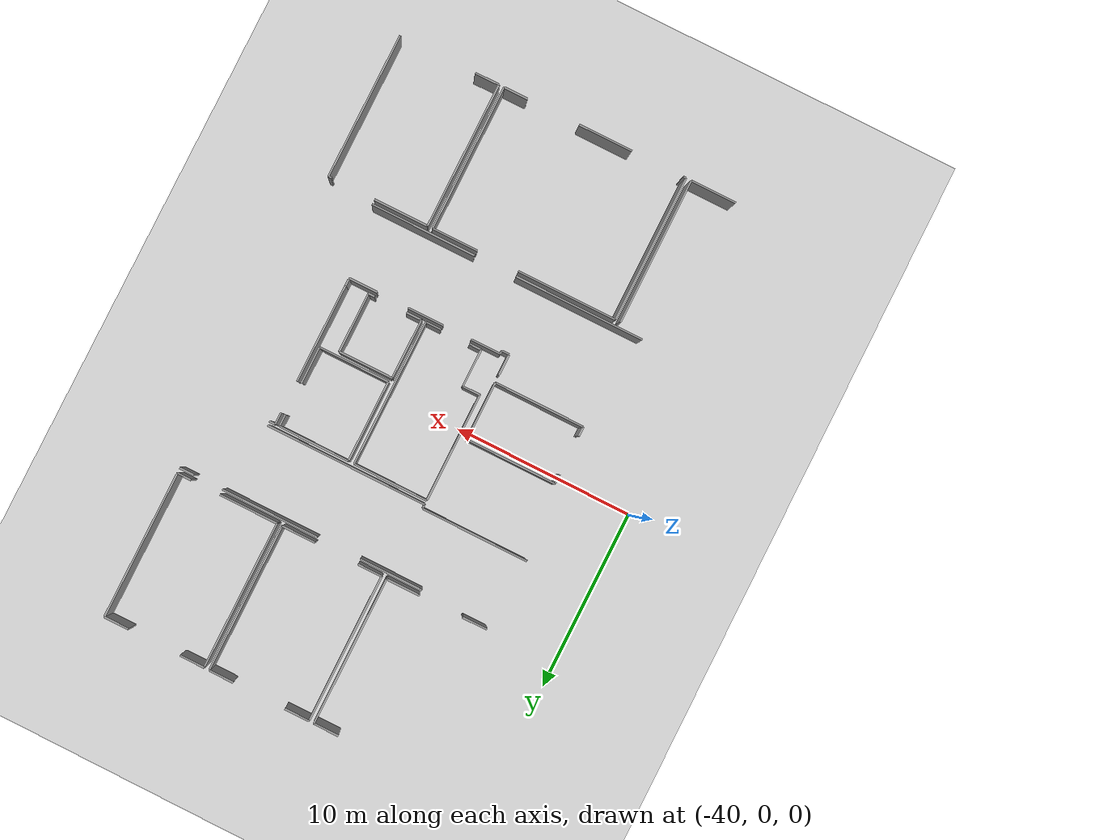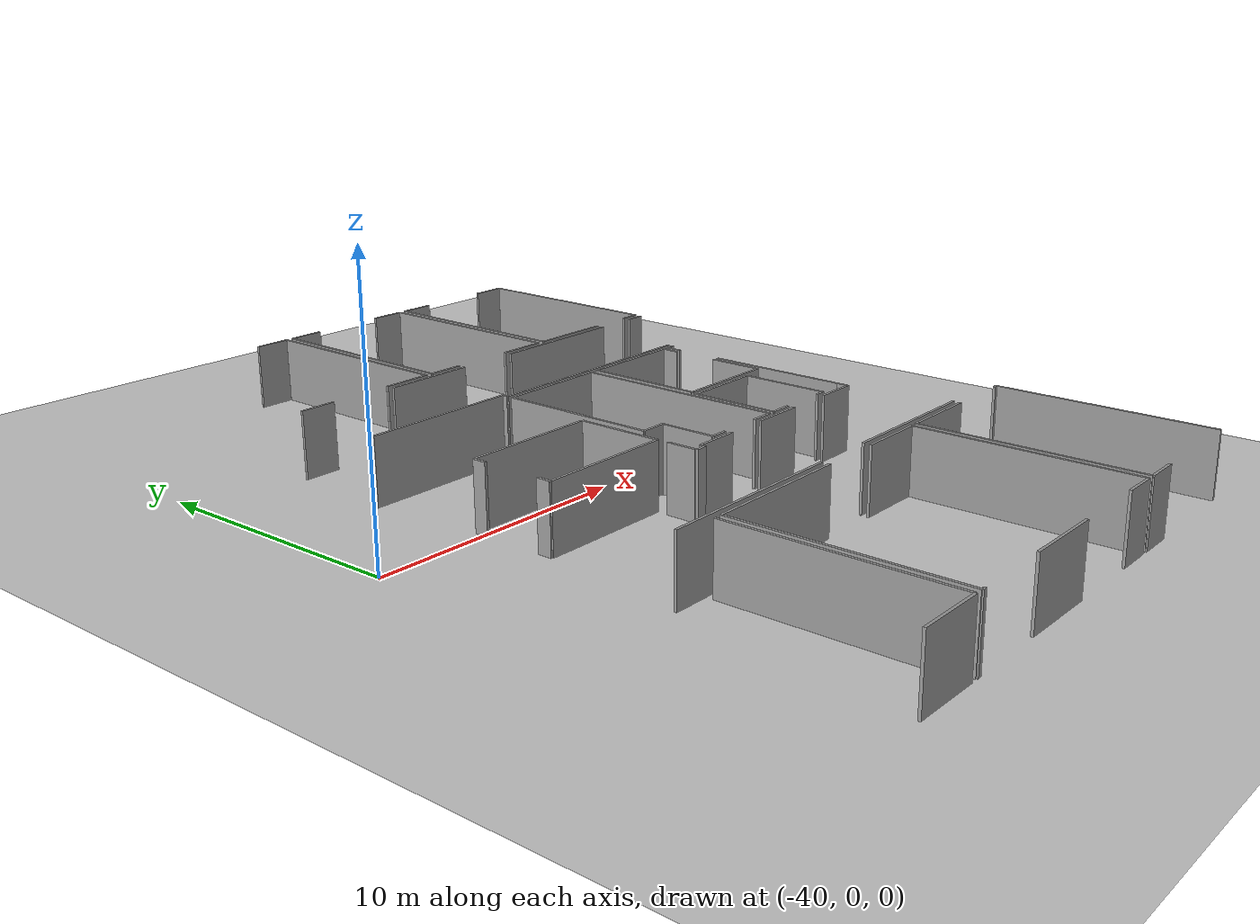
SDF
<sdf version="1.6">
 <world name="default">
  <model name="ground_plane">
   <static>1</static>
   <link name="link">
    <collision name="collision">
     <geometry><plane><normal>0 0 1</normal><size>100 100</size></plane></geometry>
     <surface><friction><ode><mu>100</mu><mu2>50</mu2></ode></friction></surface>
    </collision>
    <visual name="visual">
     <cast_shadows>0</cast_shadows>
     <geometry><plane><normal>0 0 1</normal><size>100 100</size></plane></geometry>
     <material>
      <script><uri>file://media/materials/scripts/gazebo.material</uri><name>Gazebo/Grey</name></script>
     </material>
    </visual>
   </link>
  </model>
  <model name="50041172">
   <static>1</static>
   <link name="Wall_23">
    <collision name="Wall_23_Collision">
     <geometry><box><size>8.19815185291 0.1 2.5</size></box></geometry>
     <pose>4.09907592646 0 1.25 0 0 0</pose>
    </collision>
    <visual name="Wall_23_Visual">
     <pose>4.09907592646 0 1.25 0 0 0</pose>
     <geometry><box><size>8.19815185291 0.1 2.5</size></box></geometry>
     <material>
      <script><uri>file://media/materials/scripts/gazebo.material</uri><name>Gazebo/Grey</name></script>
      <ambient>1 1 1 1</ambient>
     </material>
    </visual>
    <pose>30.7186180178 -25.3395573338 0 0 0 -1.57079632679</pose>
   </link>
   <link name="Wall_24">
    <collision name="Wall_24_Collision">
     <geometry><box><size>2.54942682036 0.1 2.5</size></box></geometry>
     <pose>1.27471341018 0 1.25 0 0 0</pose>
    </collision>
    <visual name="Wall_24_Visual">
     <pose>1.27471341018 0 1.25 0 0 0</pose>
     <geometry><box><size>2.54942682036 0.1 2.5</size></box></geometry>
     <material>
      <script><uri>file://media/materials/scripts/gazebo.material</uri><name>Gazebo/Grey</name></script>
      <ambient>1 1 1 1</ambient>
     </material>
    </visual>
    <pose>30.7186180178 -33.5377091868 0 0 0 3.14159265359</pose>
   </link>
   <link name="Wall_26">
    <collision name="Wall_26_Collision">
     <geometry><box><size>8.20704328221 0.1 2.5</size></box></geometry>
     <pose>4.1035216411 0 1.25 0 0 0</pose>
    </collision>
    <visual name="Wall_26_Visual">
     <pose>4.1035216411 0 1.25 0 0 0</pose>
     <geometry><box><size>8.20704328221 0.1 2.5</size></box></geometry>
     <material>
      <script><uri>file://media/materials/scripts/gazebo.material</uri><name>Gazebo/Grey</name></script>
      <ambient>1 1 1 1</ambient>
     </material>
    </visual>
    <pose>31.0204185323 -33.5486329427 0 0 0 1.57079632679</pose>
   </link>
   <link name="Wall_27">
    <collision name="Wall_27_Collision">
     <geometry><box><size>5.56692388301 0.1 2.5</size></box></geometry>
     <pose>2.78346194151 0 1.25 0 0 0</pose>
    </collision>
    <visual name="Wall_27_Visual">
     <pose>2.78346194151 0 1.25 0 0 0</pose>
     <geometry><box><size>5.56692388301 0.1 2.5</size></box></geometry>
     <material>
      <script><uri>file://media/materials/scripts/gazebo.material</uri><name>Gazebo/Grey</name></script>
      <ambient>1 1 1 1</ambient>
     </material>
    </visual>
    <pose>31.0204185323 -25.3415896605 0 0 0 0.0</pose>
   </link>
   <link name="Wall_28">
    <collision name="Wall_28_Collision">
     <geometry><box><size>2.57114731193 0.1 2.5</size></box></geometry>
     <pose>1.28557365597 0 1.25 0 0 0</pose>
    </collision>
    <visual name="Wall_28_Visual">
     <pose>1.28557365597 0 1.25 0 0 0</pose>
     <geometry><box><size>2.57114731193 0.1 2.5</size></box></geometry>
     <material>
      <script><uri>file://media/materials/scripts/gazebo.material</uri><name>Gazebo/Grey</name></script>
      <ambient>1 1 1 1</ambient>
     </material>
    </visual>
    <pose>38.9472547712 -25.3415896605 0 0 0 0.0</pose>
   </link>
   <link name="Wall_29">
    <collision name="Wall_29_Collision">
     <geometry><box><size>8.20132736337 0.1 2.5</size></box></geometry>
     <pose>4.10066368169 0 1.25 0 0 0</pose>
    </collision>
    <visual name="Wall_29_Visual">
     <pose>4.10066368169 0 1.25 0 0 0</pose>
     <geometry><box><size>8.20132736337 0.1 2.5</size></box></geometry>
     <material>
      <script><uri>file://media/materials/scripts/gazebo.material</uri><name>Gazebo/Grey</name></script>
      <ambient>1 1 1 1</ambient>
     </material>
    </visual>
    <pose>41.5184020831 -25.3415896605 0 0 0 -1.57079632679</pose>
   </link>
   <link name="Wall_30">
    <collision name="Wall_30_Collision">
     <geometry><box><size>1.35797529453 0.1 2.5</size></box></geometry>
     <pose>0.678987647264 0 1.25 0 0 0</pose>
    </collision>
    <visual name="Wall_30_Visual">
     <pose>0.678987647264 0 1.25 0 0 0</pose>
     <geometry><box><size>1.35797529453 0.1 2.5</size></box></geometry>
     <material>
      <script><uri>file://media/materials/scripts/gazebo.material</uri><name>Gazebo/Grey</name></script>
      <ambient>1 1 1 1</ambient>
     </material>
    </visual>
    <pose>41.5184020831 -33.5429170239 0 0 0 3.14159265359</pose>
   </link>
   <link name="Wall_31">
    <collision name="Wall_31_Collision">
     <geometry><box><size>3.03947159506 0.1 2.5</size></box></geometry>
     <pose>1.51973579753 0 1.25 0 0 0</pose>
    </collision>
    <visual name="Wall_31_Visual">
     <pose>1.51973579753 0 1.25 0 0 0</pose>
     <geometry><box><size>3.03947159506 0.1 2.5</size></box></geometry>
     <material>
      <script><uri>file://media/materials/scripts/gazebo.material</uri><name>Gazebo/Grey</name></script>
      <ambient>1 1 1 1</ambient>
     </material>
    </visual>
    <pose>37.1824330761 -33.5429170239 0 0 0 3.14159265359</pose>
   </link>
   <link name="Wall_32">
    <collision name="Wall_32_Collision">
     <geometry><box><size>0.160147764803 0.1 2.5</size></box></geometry>
     <pose>0.0800738824014 0 1.25 0 0 0</pose>
    </collision>
    <visual name="Wall_32_Visual">
     <pose>0.0800738824014 0 1.25 0 0 0</pose>
     <geometry><box><size>0.160147764803 0.1 2.5</size></box></geometry>
     <material>
      <script><uri>file://media/materials/scripts/gazebo.material</uri><name>Gazebo/Grey</name></script>
      <ambient>1 1 1 1</ambient>
     </material>
    </visual>
    <pose>31.1804642596 -33.5429170239 0 0 0 -3.10589354091</pose>
   </link>
   <link name="Wall_33">
    <collision name="Wall_33_Collision">
     <geometry><box><size>8.22292083452 0.1 2.5</size></box></geometry>
     <pose>4.11146041726 0 1.25 0 0 0</pose>
    </collision>
    <visual name="Wall_33_Visual">
     <pose>4.11146041726 0 1.25 0 0 0</pose>
     <geometry><box><size>8.22292083452 0.1 2.5</size></box></geometry>
     <material>
      <script><uri>file://media/materials/scripts/gazebo.material</uri><name>Gazebo/Grey</name></script>
      <ambient>1 1 1 1</ambient>
     </material>
    </visual>
    <pose>41.8068654536 -33.5500301673 0 0 0 1.57079632679</pose>
   </link>
   <link name="Wall_34">
    <collision name="Wall_34_Collision">
     <geometry><box><size>3.06411355625 0.1 2.5</size></box></geometry>
     <pose>1.53205677813 0 1.25 0 0 0</pose>
    </collision>
    <visual name="Wall_34_Visual">
     <pose>1.53205677813 0 1.25 0 0 0</pose>
     <geometry><box><size>3.06411355625 0.1 2.5</size></box></geometry>
     <material>
      <script><uri>file://media/materials/scripts/gazebo.material</uri><name>Gazebo/Grey</name></script>
      <ambient>1 1 1 1</ambient>
     </material>
    </visual>
    <pose>41.8068654536 -25.3271093328 0 0 0 0.0</pose>
   </link>
   <link name="Wall_35">
    <collision name="Wall_35_Collision">
     <geometry><box><size>0.176939443015 0.1 2.5</size></box></geometry>
     <pose>0.0884697215077 0 1.25 0 0 0</pose>
    </collision>
    <visual name="Wall_35_Visual">
     <pose>0.0884697215077 0 1.25 0 0 0</pose>
     <geometry><box><size>0.176939443015 0.1 2.5</size></box></geometry>
     <material>
      <script><uri>file://media/materials/scripts/gazebo.material</uri><name>Gazebo/Grey</name></script>
      <ambient>1 1 1 1</ambient>
     </material>
    </visual>
    <pose>47.3492743959 -25.3271093328 0 0 0 0.0</pose>
   </link>
   <link name="Wall_36">
    <collision name="Wall_36_Collision">
     <geometry><box><size>8.21021879267 0.1 2.5</size></box></geometry>
     <pose>4.10510939634 0 1.25 0 0 0</pose>
    </collision>
    <visual name="Wall_36_Visual">
     <pose>4.10510939634 0 1.25 0 0 0</pose>
     <geometry><box><size>8.21021879267 0.1 2.5</size></box></geometry>
     <material>
      <script><uri>file://media/materials/scripts/gazebo.material</uri><name>Gazebo/Grey</name></script>
      <ambient>1 1 1 1</ambient>
     </material>
    </visual>
    <pose>47.5262138389 -25.3271093328 0 0 0 -1.57079632679</pose>
   </link>
   <link name="Wall_38">
    <collision name="Wall_38_Collision">
     <geometry><box><size>1.37365753437 0.1 2.5</size></box></geometry>
     <pose>0.686828767185 0 1.25 0 0 0</pose>
    </collision>
    <visual name="Wall_38_Visual">
     <pose>0.686828767185 0 1.25 0 0 0</pose>
     <geometry><box><size>1.37365753437 0.1 2.5</size></box></geometry>
     <material>
      <script><uri>file://media/materials/scripts/gazebo.material</uri><name>Gazebo/Grey</name></script>
      <ambient>1 1 1 1</ambient>
     </material>
    </visual>
    <pose>43.1804642596 -33.5373281255 0 0 0 -3.13234564511</pose>
   </link>
   <link name="Wall_104">
    <collision name="Wall_104_Collision">
     <geometry><box><size>5.04398081992 0.1 2.5</size></box></geometry>
     <pose>2.52199040996 0 1.25 0 0 0</pose>
    </collision>
    <visual name="Wall_104_Visual">
     <pose>2.52199040996 0 1.25 0 0 0</pose>
     <geometry><box><size>5.04398081992 0.1 2.5</size></box></geometry>
     <material>
      <script><uri>file://media/materials/scripts/gazebo.material</uri><name>Gazebo/Grey</name></script>
      <ambient>1 1 1 1</ambient>
     </material>
    </visual>
    <pose>30.0216569814 -16.4166269728 0 0 0 0.0</pose>
   </link>
   <link name="Wall_105">
    <collision name="Wall_105_Collision">
     <geometry><box><size>3.2611222254 0.1 2.5</size></box></geometry>
     <pose>1.6305611127 0 1.25 0 0 0</pose>
    </collision>
    <visual name="Wall_105_Visual">
     <pose>1.6305611127 0 1.25 0 0 0</pose>
     <geometry><box><size>3.2611222254 0.1 2.5</size></box></geometry>
     <material>
      <script><uri>file://media/materials/scripts/gazebo.material</uri><name>Gazebo/Grey</name></script>
      <ambient>1 1 1 1</ambient>
     </material>
    </visual>
    <pose>35.0656378013 -16.4166269728 0 0 0 -1.57079632679</pose>
   </link>
   <link name="Wall_106">
    <collision name="Wall_106_Collision">
     <geometry><box><size>5.04080530945 0.1 2.5</size></box></geometry>
     <pose>2.52040265473 0 1.25 0 0 0</pose>
    </collision>
    <visual name="Wall_106_Visual">
     <pose>2.52040265473 0 1.25 0 0 0</pose>
     <geometry><box><size>5.04080530945 0.1 2.5</size></box></geometry>
     <material>
      <script><uri>file://media/materials/scripts/gazebo.material</uri><name>Gazebo/Grey</name></script>
      <ambient>1 1 1 1</ambient>
     </material>
    </visual>
    <pose>35.0656378013 -19.6777491982 0 0 0 3.14159265359</pose>
   </link>
   <link name="Wall_107">
    <collision name="Wall_107_Collision">
     <geometry><box><size>0.538947635832 0.1 2.5</size></box></geometry>
     <pose>0.269473817916 0 1.25 0 0 0</pose>
    </collision>
    <visual name="Wall_107_Visual">
     <pose>0.269473817916 0 1.25 0 0 0</pose>
     <geometry><box><size>0.538947635832 0.1 2.5</size></box></geometry>
     <material>
      <script><uri>file://media/materials/scripts/gazebo.material</uri><name>Gazebo/Grey</name></script>
      <ambient>1 1 1 1</ambient>
     </material>
    </visual>
    <pose>30.0248324918 -19.6777491982 0 0 0 1.57079632679</pose>
   </link>
   <link name="Wall_108">
    <collision name="Wall_108_Collision">
     <geometry><box><size>0.520539361214 0.1 2.5</size></box></geometry>
     <pose>0.260269680607 0 1.25 0 0 0</pose>
    </collision>
    <visual name="Wall_108_Visual">
     <pose>0.260269680607 0 1.25 0 0 0</pose>
     <geometry><box><size>0.520539361214 0.1 2.5</size></box></geometry>
     <material>
      <script><uri>file://media/materials/scripts/gazebo.material</uri><name>Gazebo/Grey</name></script>
      <ambient>1 1 1 1</ambient>
     </material>
    </visual>
    <pose>30.0248324918 -16.9371566479 0 0 0 1.57689678796</pose>
   </link>
   <link name="Wall_110">
    <collision name="Wall_110_Collision">
     <geometry><box><size>1.13784890921 0.1 2.5</size></box></geometry>
     <pose>0.568924454606 0 1.25 0 0 0</pose>
    </collision>
    <visual name="Wall_110_Visual">
     <pose>0.568924454606 0 1.25 0 0 0</pose>
     <geometry><box><size>1.13784890921 0.1 2.5</size></box></geometry>
     <material>
      <script><uri>file://media/materials/scripts/gazebo.material</uri><name>Gazebo/Grey</name></script>
      <ambient>1 1 1 1</ambient>
     </material>
    </visual>
    <pose>35.0826585374 -20.1074592741 0 0 0 -1.57079632679</pose>
   </link>
   <link name="Wall_112">
    <collision name="Wall_112_Collision">
     <geometry><box><size>6.05874694357 0.1 2.5</size></box></geometry>
     <pose>3.02937347179 0 1.25 0 0 0</pose>
    </collision>
    <visual name="Wall_112_Visual">
     <pose>3.02937347179 0 1.25 0 0 0</pose>
     <geometry><box><size>6.05874694357 0.1 2.5</size></box></geometry>
     <material>
      <script><uri>file://media/materials/scripts/gazebo.material</uri><name>Gazebo/Grey</name></script>
      <ambient>1 1 1 1</ambient>
     </material>
    </visual>
    <pose>35.4952208568 -18.7609158172 0 0 0 1.57079632679</pose>
   </link>
   <link name="Wall_113">
    <collision name="Wall_113_Collision">
     <geometry><box><size>4.16690482995 0.1 2.5</size></box></geometry>
     <pose>2.08345241498 0 1.25 0 0 0</pose>
    </collision>
    <visual name="Wall_113_Visual">
     <pose>2.08345241498 0 1.25 0 0 0</pose>
     <geometry><box><size>4.16690482995 0.1 2.5</size></box></geometry>
     <material>
      <script><uri>file://media/materials/scripts/gazebo.material</uri><name>Gazebo/Grey</name></script>
      <ambient>1 1 1 1</ambient>
     </material>
    </visual>
    <pose>35.4952208568 -12.7021688736 0 0 0 0.0</pose>
   </link>
   <link name="Wall_114">
    <collision name="Wall_114_Collision">
     <geometry><box><size>8.16029976819 0.1 2.5</size></box></geometry>
     <pose>4.08014988409 0 1.25 0 0 0</pose>
    </collision>
    <visual name="Wall_114_Visual">
     <pose>4.08014988409 0 1.25 0 0 0</pose>
     <geometry><box><size>8.16029976819 0.1 2.5</size></box></geometry>
     <material>
      <script><uri>file://media/materials/scripts/gazebo.material</uri><name>Gazebo/Grey</name></script>
      <ambient>1 1 1 1</ambient>
     </material>
    </visual>
    <pose>39.6621256867 -12.7021688736 0 0 0 -1.57079632679</pose>
   </link>
   <link name="Wall_115">
    <collision name="Wall_115_Collision">
     <geometry><box><size>0.880632561684 0.1 2.5</size></box></geometry>
     <pose>0.440316280842 0 1.25 0 0 0</pose>
    </collision>
    <visual name="Wall_115_Visual">
     <pose>0.440316280842 0 1.25 0 0 0</pose>
     <geometry><box><size>0.880632561684 0.1 2.5</size></box></geometry>
     <material>
      <script><uri>file://media/materials/scripts/gazebo.material</uri><name>Gazebo/Grey</name></script>
      <ambient>1 1 1 1</ambient>
     </material>
    </visual>
    <pose>39.6621256867 -20.8624686418 0 0 0 3.14159265359</pose>
   </link>
   <link name="Wall_116">
    <collision name="Wall_116_Collision">
     <geometry><box><size>0.67676478994 0.1 2.5</size></box></geometry>
     <pose>0.33838239497 0 1.25 0 0 0</pose>
    </collision>
    <visual name="Wall_116_Visual">
     <pose>0.33838239497 0 1.25 0 0 0</pose>
     <geometry><box><size>0.67676478994 0.1 2.5</size></box></geometry>
     <material>
      <script><uri>file://media/materials/scripts/gazebo.material</uri><name>Gazebo/Grey</name></script>
      <ambient>1 1 1 1</ambient>
     </material>
    </visual>
    <pose>37.1533454003 -20.8624686418 0 0 0 3.14159265359</pose>
   </link>
   <link name="Wall_117">
    <collision name="Wall_117_Collision">
     <geometry><box><size>2.10777682512 0.1 2.5</size></box></geometry>
     <pose>1.05388841256 0 1.25 0 0 0</pose>
    </collision>
    <visual name="Wall_117_Visual">
     <pose>1.05388841256 0 1.25 0 0 0</pose>
     <geometry><box><size>2.10777682512 0.1 2.5</size></box></geometry>
     <material>
      <script><uri>file://media/materials/scripts/gazebo.material</uri><name>Gazebo/Grey</name></script>
      <ambient>1 1 1 1</ambient>
     </material>
    </visual>
    <pose>36.4765806103 -20.8624686418 0 0 0 1.57079632679</pose>
   </link>
   <link name="Wall_118">
    <collision name="Wall_118_Collision">
     <geometry><box><size>0.981379490376 0.1 2.5</size></box></geometry>
     <pose>0.490689745188 0 1.25 0 0 0</pose>
    </collision>
    <visual name="Wall_118_Visual">
     <pose>0.490689745188 0 1.25 0 0 0</pose>
     <geometry><box><size>0.981379490376 0.1 2.5</size></box></geometry>
     <material>
      <script><uri>file://media/materials/scripts/gazebo.material</uri><name>Gazebo/Grey</name></script>
      <ambient>1 1 1 1</ambient>
     </material>
    </visual>
    <pose>36.4765806103 -18.7546918167 0 0 0 -3.13525051755</pose>
   </link>
   <link name="Wall_119">
    <collision name="Wall_119_Collision">
     <geometry><box><size>3.35410117176 0.1 2.5</size></box></geometry>
     <pose>1.67705058588 0 1.25 0 0 0</pose>
    </collision>
    <visual name="Wall_119_Visual">
     <pose>1.67705058588 0 1.25 0 0 0</pose>
     <geometry><box><size>3.35410117176 0.1 2.5</size></box></geometry>
     <material>
      <script><uri>file://media/materials/scripts/gazebo.material</uri><name>Gazebo/Grey</name></script>
      <ambient>1 1 1 1</ambient>
     </material>
    </visual>
    <pose>39.9020672573 -20.8581499476 0 0 0 1.57079632679</pose>
   </link>
   <link name="Wall_120">
    <collision name="Wall_120_Collision">
     <geometry><box><size>3.04379028929 0.1 2.5</size></box></geometry>
     <pose>1.52189514464 0 1.25 0 0 0</pose>
    </collision>
    <visual name="Wall_120_Visual">
     <pose>1.52189514464 0 1.25 0 0 0</pose>
     <geometry><box><size>3.04379028929 0.1 2.5</size></box></geometry>
     <material>
      <script><uri>file://media/materials/scripts/gazebo.material</uri><name>Gazebo/Grey</name></script>
      <ambient>1 1 1 1</ambient>
     </material>
    </visual>
    <pose>39.9020672573 -17.5040487758 0 0 0 0.0</pose>
   </link>
   <link name="Wall_121">
    <collision name="Wall_121_Collision">
     <geometry><box><size>3.34584484456 0.1 2.5</size></box></geometry>
     <pose>1.67292242228 0 1.25 0 0 0</pose>
    </collision>
    <visual name="Wall_121_Visual">
     <pose>1.67292242228 0 1.25 0 0 0</pose>
     <geometry><box><size>3.34584484456 0.1 2.5</size></box></geometry>
     <material>
      <script><uri>file://media/materials/scripts/gazebo.material</uri><name>Gazebo/Grey</name></script>
      <ambient>1 1 1 1</ambient>
     </material>
    </visual>
    <pose>42.9458575466 -17.5040487758 0 0 0 -1.57079632679</pose>
   </link>
   <link name="Wall_122">
    <collision name="Wall_122_Collision">
     <geometry><box><size>0.36518370328 0.1 2.5</size></box></geometry>
     <pose>0.18259185164 0 1.25 0 0 0</pose>
    </collision>
    <visual name="Wall_122_Visual">
     <pose>0.18259185164 0 1.25 0 0 0</pose>
     <geometry><box><size>0.36518370328 0.1 2.5</size></box></geometry>
     <material>
      <script><uri>file://media/materials/scripts/gazebo.material</uri><name>Gazebo/Grey</name></script>
      <ambient>1 1 1 1</ambient>
     </material>
    </visual>
    <pose>42.9458575466 -20.8498936204 0 0 0 3.14159265359</pose>
   </link>
   <link name="Wall_123">
    <collision name="Wall_123_Collision">
     <geometry><box><size>0.861365028112 0.1 2.5</size></box></geometry>
     <pose>0.430682514056 0 1.25 0 0 0</pose>
    </collision>
    <visual name="Wall_123_Visual">
     <pose>0.430682514056 0 1.25 0 0 0</pose>
     <geometry><box><size>0.861365028112 0.1 2.5</size></box></geometry>
     <material>
      <script><uri>file://media/materials/scripts/gazebo.material</uri><name>Gazebo/Grey</name></script>
      <ambient>1 1 1 1</ambient>
     </material>
    </visual>
    <pose>40.7633927154 -20.8498936204 0 0 0 -3.13200734032</pose>
   </link>
   <link name="Wall_124">
    <collision name="Wall_124_Collision">
     <geometry><box><size>5.49617350989 0.1 2.5</size></box></geometry>
     <pose>2.74808675495 0 1.25 0 0 0</pose>
    </collision>
    <visual name="Wall_124_Visual">
     <pose>2.74808675495 0 1.25 0 0 0</pose>
     <geometry><box><size>5.49617350989 0.1 2.5</size></box></geometry>
     <material>
      <script><uri>file://media/materials/scripts/gazebo.material</uri><name>Gazebo/Grey</name></script>
      <ambient>1 1 1 1</ambient>
     </material>
    </visual>
    <pose>44.1888793624 -20.6716839732 0 0 0 1.57079632679</pose>
   </link>
   <link name="Wall_125">
    <collision name="Wall_125_Collision">
     <geometry><box><size>0.657203645486 0.1 2.5</size></box></geometry>
     <pose>0.328601822743 0 1.25 0 0 0</pose>
    </collision>
    <visual name="Wall_125_Visual">
     <pose>0.328601822743 0 1.25 0 0 0</pose>
     <geometry><box><size>0.657203645486 0.1 2.5</size></box></geometry>
     <material>
      <script><uri>file://media/materials/scripts/gazebo.material</uri><name>Gazebo/Grey</name></script>
      <ambient>1 1 1 1</ambient>
     </material>
    </visual>
    <pose>44.1888793624 -13.3554348862 0 0 0 1.57079632679</pose>
   </link>
   <link name="Wall_126">
    <collision name="Wall_126_Collision">
     <geometry><box><size>0.344098313804 0.1 2.5</size></box></geometry>
     <pose>0.172049156902 0 1.25 0 0 0</pose>
    </collision>
    <visual name="Wall_126_Visual">
     <pose>0.172049156902 0 1.25 0 0 0</pose>
     <geometry><box><size>0.344098313804 0.1 2.5</size></box></geometry>
     <material>
      <script><uri>file://media/materials/scripts/gazebo.material</uri><name>Gazebo/Grey</name></script>
      <ambient>1 1 1 1</ambient>
     </material>
    </visual>
    <pose>44.1888793624 -12.6982312407 0 0 0 0.0</pose>
   </link>
   <link name="Wall_127">
    <collision name="Wall_127_Collision">
     <geometry><box><size>0.386795945466 0.1 2.5</size></box></geometry>
     <pose>0.193397972733 0 1.25 0 0 0</pose>
    </collision>
    <visual name="Wall_127_Visual">
     <pose>0.193397972733 0 1.25 0 0 0</pose>
     <geometry><box><size>0.386795945466 0.1 2.5</size></box></geometry>
     <material>
      <script><uri>file://media/materials/scripts/gazebo.material</uri><name>Gazebo/Grey</name></script>
      <ambient>1 1 1 1</ambient>
     </material>
    </visual>
    <pose>44.1850687498 -21.0584611476 0 0 0 1.5609444288</pose>
   </link>
   <link name="Wall_128">
    <collision name="Wall_128_Collision">
     <geometry><box><size>4.54199612588 0.1 2.5</size></box></geometry>
     <pose>2.27099806294 0 1.25 0 0 0</pose>
    </collision>
    <visual name="Wall_128_Visual">
     <pose>2.27099806294 0 1.25 0 0 0</pose>
     <geometry><box><size>4.54199612588 0.1 2.5</size></box></geometry>
     <material>
      <script><uri>file://media/materials/scripts/gazebo.material</uri><name>Gazebo/Grey</name></script>
      <ambient>1 1 1 1</ambient>
     </material>
    </visual>
    <pose>39.9899653869 -17.2463243466 0 0 0 1.57079632679</pose>
   </link>
   <link name="Wall_129">
    <collision name="Wall_129_Collision">
     <geometry><box><size>3.95770220063 0.1 2.5</size></box></geometry>
     <pose>1.97885110031 0 1.25 0 0 0</pose>
    </collision>
    <visual name="Wall_129_Visual">
     <pose>1.97885110031 0 1.25 0 0 0</pose>
     <geometry><box><size>3.95770220063 0.1 2.5</size></box></geometry>
     <material>
      <script><uri>file://media/materials/scripts/gazebo.material</uri><name>Gazebo/Grey</name></script>
      <ambient>1 1 1 1</ambient>
     </material>
    </visual>
    <pose>39.9899653869 -12.7043282208 0 0 0 0.0</pose>
   </link>
   <link name="Wall_130">
    <collision name="Wall_130_Collision">
     <geometry><box><size>0.674478422406 0.1 2.5</size></box></geometry>
     <pose>0.337239211203 0 1.25 0 0 0</pose>
    </collision>
    <visual name="Wall_130_Visual">
     <pose>0.337239211203 0 1.25 0 0 0</pose>
     <geometry><box><size>0.674478422406 0.1 2.5</size></box></geometry>
     <material>
      <script><uri>file://media/materials/scripts/gazebo.material</uri><name>Gazebo/Grey</name></script>
      <ambient>1 1 1 1</ambient>
     </material>
    </visual>
    <pose>43.9476675876 -12.7043282208 0 0 0 -1.57079632679</pose>
   </link>
   <link name="Wall_131">
    <collision name="Wall_131_Collision">
     <geometry><box><size>2.06293861738 0.1 2.5</size></box></geometry>
     <pose>1.03146930869 0 1.25 0 0 0</pose>
    </collision>
    <visual name="Wall_131_Visual">
     <pose>1.03146930869 0 1.25 0 0 0</pose>
     <geometry><box><size>2.06293861738 0.1 2.5</size></box></geometry>
     <material>
      <script><uri>file://media/materials/scripts/gazebo.material</uri><name>Gazebo/Grey</name></script>
      <ambient>1 1 1 1</ambient>
     </material>
    </visual>
    <pose>43.9476675876 -15.1870693214 0 0 0 -1.57079632679</pose>
   </link>
   <link name="Wall_132">
    <collision name="Wall_132_Collision">
     <geometry><box><size>3.95770391486 0.1 2.5</size></box></geometry>
     <pose>1.97885195743 0 1.25 0 0 0</pose>
    </collision>
    <visual name="Wall_132_Visual">
     <pose>1.97885195743 0 1.25 0 0 0</pose>
     <geometry><box><size>3.95770391486 0.1 2.5</size></box></geometry>
     <material>
      <script><uri>file://media/materials/scripts/gazebo.material</uri><name>Gazebo/Grey</name></script>
      <ambient>1 1 1 1</ambient>
     </material>
    </visual>
    <pose>43.9476675876 -17.2500079388 0 0 0 3.14066191376</pose>
   </link>
   <link name="Wall_178">
    <collision name="Wall_178_Collision">
     <geometry><box><size>0.422469912038 0.1 2.5</size></box></geometry>
     <pose>0.211234956019 0 1.25 0 0 0</pose>
    </collision>
    <visual name="Wall_178_Visual">
     <pose>0.211234956019 0 1.25 0 0 0</pose>
     <geometry><box><size>0.422469912038 0.1 2.5</size></box></geometry>
     <material>
      <script><uri>file://media/materials/scripts/gazebo.material</uri><name>Gazebo/Grey</name></script>
      <ambient>1 1 1 1</ambient>
     </material>
    </visual>
    <pose>35.080118129 -21.296497412 0 0 0 0.0</pose>
   </link>
   <link name="Wall_179">
    <collision name="Wall_179_Collision">
     <geometry><box><size>0.188879362357 0.1 2.5</size></box></geometry>
     <pose>0.0944396811787 0 1.25 0 0 0</pose>
    </collision>
    <visual name="Wall_179_Visual">
     <pose>0.0944396811787 0 1.25 0 0 0</pose>
     <geometry><box><size>0.188879362357 0.1 2.5</size></box></geometry>
     <material>
      <script><uri>file://media/materials/scripts/gazebo.material</uri><name>Gazebo/Grey</name></script>
      <ambient>1 1 1 1</ambient>
     </material>
    </visual>
    <pose>35.502588041 -21.296497412 0 0 0 1.57079632679</pose>
   </link>
   <link name="Wall_180">
    <collision name="Wall_180_Collision">
     <geometry><box><size>1.68009907593 0.1 2.5</size></box></geometry>
     <pose>0.840049537963 0 1.25 0 0 0</pose>
    </collision>
    <visual name="Wall_180_Visual">
     <pose>0.840049537963 0 1.25 0 0 0</pose>
     <geometry><box><size>1.68009907593 0.1 2.5</size></box></geometry>
     <material>
      <script><uri>file://media/materials/scripts/gazebo.material</uri><name>Gazebo/Grey</name></script>
      <ambient>1 1 1 1</ambient>
     </material>
    </visual>
    <pose>35.502588041 -21.1076180496 0 0 0 0.0</pose>
   </link>
   <link name="Wall_181">
    <collision name="Wall_181_Collision">
     <geometry><box><size>2.01581404211 0.1 2.5</size></box></geometry>
     <pose>1.00790702105 0 1.25 0 0 0</pose>
    </collision>
    <visual name="Wall_181_Visual">
     <pose>1.00790702105 0 1.25 0 0 0</pose>
     <geometry><box><size>2.01581404211 0.1 2.5</size></box></geometry>
     <material>
      <script><uri>file://media/materials/scripts/gazebo.material</uri><name>Gazebo/Grey</name></script>
      <ambient>1 1 1 1</ambient>
     </material>
    </visual>
    <pose>38.778444635 -21.1076180496 0 0 0 0.0</pose>
   </link>
   <link name="Wall_182">
    <collision name="Wall_182_Collision">
     <geometry><box><size>1.60325172271 0.1 2.5</size></box></geometry>
     <pose>0.801625861357 0 1.25 0 0 0</pose>
    </collision>
    <visual name="Wall_182_Visual">
     <pose>0.801625861357 0 1.25 0 0 0</pose>
     <geometry><box><size>1.60325172271 0.1 2.5</size></box></geometry>
     <material>
      <script><uri>file://media/materials/scripts/gazebo.material</uri><name>Gazebo/Grey</name></script>
      <ambient>1 1 1 1</ambient>
     </material>
    </visual>
    <pose>42.5970594773 -21.1076180496 0 0 0 0.0</pose>
   </link>
   <link name="Wall_201">
    <collision name="Wall_201_Collision">
     <geometry><box><size>5.9163570544 0.1 2.5</size></box></geometry>
     <pose>2.9581785272 0 1.25 0 0 0</pose>
    </collision>
    <visual name="Wall_201_Visual">
     <pose>2.9581785272 0 1.25 0 0 0</pose>
     <geometry><box><size>5.9163570544 0.1 2.5</size></box></geometry>
     <material>
      <script><uri>file://media/materials/scripts/gazebo.material</uri><name>Gazebo/Grey</name></script>
      <ambient>1 1 1 1</ambient>
     </material>
    </visual>
    <pose>44.8664062748 -25.0504588613 0 0 0 3.14159265359</pose>
   </link>
   <link name="Wall_202">
    <collision name="Wall_202_Collision">
     <geometry><box><size>7.23482899876 0.1 2.5</size></box></geometry>
     <pose>3.61741449938 0 1.25 0 0 0</pose>
    </collision>
    <visual name="Wall_202_Visual">
     <pose>3.61741449938 0 1.25 0 0 0</pose>
     <geometry><box><size>7.23482899876 0.1 2.5</size></box></geometry>
     <material>
      <script><uri>file://media/materials/scripts/gazebo.material</uri><name>Gazebo/Grey</name></script>
      <ambient>1 1 1 1</ambient>
     </material>
    </visual>
    <pose>36.5595249436 -25.0504588613 0 0 0 3.14159265359</pose>
   </link>
   <link name="Wall_215">
    <collision name="Wall_215_Collision">
     <geometry><box><size>1.39366803214 0.1 2.5</size></box></geometry>
     <pose>0.696834016068 0 1.25 0 0 0</pose>
    </collision>
    <visual name="Wall_215_Visual">
     <pose>0.696834016068 0 1.25 0 0 0</pose>
     <geometry><box><size>1.39366803214 0.1 2.5</size></box></geometry>
     <material>
      <script><uri>file://media/materials/scripts/gazebo.material</uri><name>Gazebo/Grey</name></script>
      <ambient>1 1 1 1</ambient>
     </material>
    </visual>
    <pose>34.1377536439 -0.0104156743196 0 0 0 0.0</pose>
   </link>
   <link name="Wall_216">
    <collision name="Wall_216_Collision">
     <geometry><box><size>8.20513797593 0.1 2.5</size></box></geometry>
     <pose>4.10256898796 0 1.25 0 0 0</pose>
    </collision>
    <visual name="Wall_216_Visual">
     <pose>4.10256898796 0 1.25 0 0 0</pose>
     <geometry><box><size>8.20513797593 0.1 2.5</size></box></geometry>
     <material>
      <script><uri>file://media/materials/scripts/gazebo.material</uri><name>Gazebo/Grey</name></script>
      <ambient>1 1 1 1</ambient>
     </material>
    </visual>
    <pose>35.531421676 -0.0104156743196 0 0 0 -1.57079632679</pose>
   </link>
   <link name="Wall_217">
    <collision name="Wall_217_Collision">
     <geometry><box><size>1.88650725604 0.1 2.5</size></box></geometry>
     <pose>0.943253628021 0 1.25 0 0 0</pose>
    </collision>
    <visual name="Wall_217_Visual">
     <pose>0.943253628021 0 1.25 0 0 0</pose>
     <geometry><box><size>1.88650725604 0.1 2.5</size></box></geometry>
     <material>
      <script><uri>file://media/materials/scripts/gazebo.material</uri><name>Gazebo/Grey</name></script>
      <ambient>1 1 1 1</ambient>
     </material>
    </visual>
    <pose>35.531421676 -8.21555365025 0 0 0 3.14159265359</pose>
   </link>
   <link name="Wall_218">
    <collision name="Wall_218_Collision">
     <geometry><box><size>1.37592364148 0.1 2.5</size></box></geometry>
     <pose>0.687961820738 0 1.25 0 0 0</pose>
    </collision>
    <visual name="Wall_218_Visual">
     <pose>0.687961820738 0 1.25 0 0 0</pose>
     <geometry><box><size>1.37592364148 0.1 2.5</size></box></geometry>
     <material>
      <script><uri>file://media/materials/scripts/gazebo.material</uri><name>Gazebo/Grey</name></script>
      <ambient>1 1 1 1</ambient>
     </material>
    </visual>
    <pose>31.1864342193 -8.21555365025 0 0 0 -3.13411494954</pose>
   </link>
   <link name="Wall_219">
    <collision name="Wall_219_Collision">
     <geometry><box><size>8.20945667016 0.1 2.5</size></box></geometry>
     <pose>4.10472833508 0 1.25 0 0 0</pose>
    </collision>
    <visual name="Wall_219_Visual">
     <pose>4.10472833508 0 1.25 0 0 0</pose>
     <geometry><box><size>8.20945667016 0.1 2.5</size></box></geometry>
     <material>
      <script><uri>file://media/materials/scripts/gazebo.material</uri><name>Gazebo/Grey</name></script>
      <ambient>1 1 1 1</ambient>
     </material>
    </visual>
    <pose>35.8126448827 -8.21898320155 0 0 0 1.57079632679</pose>
   </link>
   <link name="Wall_220">
    <collision name="Wall_220_Collision">
     <geometry><box><size>1.37575815312 0.1 2.5</size></box></geometry>
     <pose>0.687879076562 0 1.25 0 0 0</pose>
    </collision>
    <visual name="Wall_220_Visual">
     <pose>0.687879076562 0 1.25 0 0 0</pose>
     <geometry><box><size>1.37575815312 0.1 2.5</size></box></geometry>
     <material>
      <script><uri>file://media/materials/scripts/gazebo.material</uri><name>Gazebo/Grey</name></script>
      <ambient>1 1 1 1</ambient>
     </material>
    </visual>
    <pose>35.8126448827 -0.00952653138992 0 0 0 0.0</pose>
   </link>
   <link name="Wall_221">
    <collision name="Wall_221_Collision">
     <geometry><box><size>1.37207456099 0.1 2.5</size></box></geometry>
     <pose>0.686037280493 0 1.25 0 0 0</pose>
    </collision>
    <visual name="Wall_221_Visual">
     <pose>0.686037280493 0 1.25 0 0 0</pose>
     <geometry><box><size>1.37207456099 0.1 2.5</size></box></geometry>
     <material>
      <script><uri>file://media/materials/scripts/gazebo.material</uri><name>Gazebo/Grey</name></script>
      <ambient>1 1 1 1</ambient>
     </material>
    </visual>
    <pose>40.1459464609 -0.00952653138992 0 0 0 0.0</pose>
   </link>
   <link name="Wall_222">
    <collision name="Wall_222_Collision">
     <geometry><box><size>8.21085389476 0.1 2.5</size></box></geometry>
     <pose>4.10542694738 0 1.25 0 0 0</pose>
    </collision>
    <visual name="Wall_222_Visual">
     <pose>4.10542694738 0 1.25 0 0 0</pose>
     <geometry><box><size>8.21085389476 0.1 2.5</size></box></geometry>
     <material>
      <script><uri>file://media/materials/scripts/gazebo.material</uri><name>Gazebo/Grey</name></script>
      <ambient>1 1 1 1</ambient>
     </material>
    </visual>
    <pose>41.5180210219 -0.00952653138992 0 0 0 -1.57079632679</pose>
   </link>
   <link name="Wall_223">
    <collision name="Wall_223_Collision">
     <geometry><box><size>1.8814264393 0.1 2.5</size></box></geometry>
     <pose>0.94071321965 0 1.25 0 0 0</pose>
    </collision>
    <visual name="Wall_223_Visual">
     <pose>0.94071321965 0 1.25 0 0 0</pose>
     <geometry><box><size>1.8814264393 0.1 2.5</size></box></geometry>
     <material>
      <script><uri>file://media/materials/scripts/gazebo.material</uri><name>Gazebo/Grey</name></script>
      <ambient>1 1 1 1</ambient>
     </material>
    </visual>
    <pose>41.5180210219 -8.22038042615 0 0 0 3.14159265359</pose>
   </link>
   <link name="Wall_224">
    <collision name="Wall_224_Collision">
     <geometry><box><size>1.36153258317 0.1 2.5</size></box></geometry>
     <pose>0.680766291587 0 1.25 0 0 0</pose>
    </collision>
    <visual name="Wall_224_Visual">
     <pose>0.680766291587 0 1.25 0 0 0</pose>
     <geometry><box><size>1.36153258317 0.1 2.5</size></box></geometry>
     <material>
      <script><uri>file://media/materials/scripts/gazebo.material</uri><name>Gazebo/Grey</name></script>
      <ambient>1 1 1 1</ambient>
     </material>
    </visual>
    <pose>37.1741767489 -8.22038042615 0 0 0 3.14056643882</pose>
   </link>
   <link name="Wall_225">
    <collision name="Wall_225_Collision">
     <geometry><box><size>8.20056524086 0.1 2.5</size></box></geometry>
     <pose>4.10028262043 0 1.25 0 0 0</pose>
    </collision>
    <visual name="Wall_225_Visual">
     <pose>4.10028262043 0 1.25 0 0 0</pose>
     <geometry><box><size>8.20056524086 0.1 2.5</size></box></geometry>
     <material>
      <script><uri>file://media/materials/scripts/gazebo.material</uri><name>Gazebo/Grey</name></script>
      <ambient>1 1 1 1</ambient>
     </material>
    </visual>
    <pose>41.8088977803 -8.21860214029 0 0 0 1.57079632679</pose>
   </link>
   <link name="Wall_226">
    <collision name="Wall_226_Collision">
     <geometry><box><size>1.36572354006 0.1 2.5</size></box></geometry>
     <pose>0.68286177003 0 1.25 0 0 0</pose>
    </collision>
    <visual name="Wall_226_Visual">
     <pose>0.68286177003 0 1.25 0 0 0</pose>
     <geometry><box><size>1.36572354006 0.1 2.5</size></box></geometry>
     <material>
      <script><uri>file://media/materials/scripts/gazebo.material</uri><name>Gazebo/Grey</name></script>
      <ambient>1 1 1 1</ambient>
     </material>
    </visual>
    <pose>41.8088977803 -0.0180368994316 0 0 0 0.0</pose>
   </link>
   <link name="Wall_227">
    <collision name="Wall_227_Collision">
     <geometry><box><size>1.38871423581 0.1 2.5</size></box></geometry>
     <pose>0.694357117907 0 1.25 0 0 0</pose>
    </collision>
    <visual name="Wall_227_Visual">
     <pose>0.694357117907 0 1.25 0 0 0</pose>
     <geometry><box><size>1.38871423581 0.1 2.5</size></box></geometry>
     <material>
      <script><uri>file://media/materials/scripts/gazebo.material</uri><name>Gazebo/Grey</name></script>
      <ambient>1 1 1 1</ambient>
     </material>
    </visual>
    <pose>46.1320377251 -0.0180368994316 0 0 0 0.0</pose>
   </link>
   <link name="Wall_228">
    <collision name="Wall_228_Collision">
     <geometry><box><size>8.19993013877 0.1 2.5</size></box></geometry>
     <pose>4.09996506938 0 1.25 0 0 0</pose>
    </collision>
    <visual name="Wall_228_Visual">
     <pose>4.09996506938 0 1.25 0 0 0</pose>
     <geometry><box><size>8.19993013877 0.1 2.5</size></box></geometry>
     <material>
      <script><uri>file://media/materials/scripts/gazebo.material</uri><name>Gazebo/Grey</name></script>
      <ambient>1 1 1 1</ambient>
     </material>
    </visual>
    <pose>47.5207519609 -0.0180368994316 0 0 0 -1.57079632679</pose>
   </link>
   <link name="Wall_229">
    <collision name="Wall_229_Collision">
     <geometry><box><size>0.781429614811 0.1 2.5</size></box></geometry>
     <pose>0.390714807405 0 1.25 0 0 0</pose>
    </collision>
    <visual name="Wall_229_Visual">
     <pose>0.390714807405 0 1.25 0 0 0</pose>
     <geometry><box><size>0.781429614811 0.1 2.5</size></box></geometry>
     <material>
      <script><uri>file://media/materials/scripts/gazebo.material</uri><name>Gazebo/Grey</name></script>
      <ambient>1 1 1 1</ambient>
     </material>
    </visual>
    <pose>47.5207519609 -8.2179670382 0 0 0 3.14159265359</pose>
   </link>
   <link name="Wall_230">
    <collision name="Wall_230_Collision">
     <geometry><box><size>3.26353567515 0.1 2.5</size></box></geometry>
     <pose>1.63176783757 0 1.25 0 0 0</pose>
    </collision>
    <visual name="Wall_230_Visual">
     <pose>1.63176783757 0 1.25 0 0 0</pose>
     <geometry><box><size>3.26353567515 0.1 2.5</size></box></geometry>
     <material>
      <script><uri>file://media/materials/scripts/gazebo.material</uri><name>Gazebo/Grey</name></script>
      <ambient>1 1 1 1</ambient>
     </material>
    </visual>
    <pose>45.0724333937 -8.2179670382 0 0 0 -3.14139804806</pose>
   </link>
   <link name="Wall_296">
    <collision name="Wall_296_Collision">
     <geometry><box><size>3.53129465562 0.1 2.5</size></box></geometry>
     <pose>1.76564732781 0 1.25 0 0 0</pose>
    </collision>
    <visual name="Wall_296_Visual">
     <pose>1.76564732781 0 1.25 0 0 0</pose>
     <geometry><box><size>3.53129465562 0.1 2.5</size></box></geometry>
     <material>
      <script><uri>file://media/materials/scripts/gazebo.material</uri><name>Gazebo/Grey</name></script>
      <ambient>1 1 1 1</ambient>
     </material>
    </visual>
    <pose>33.6647296053 -8.50935187831 0 0 0 0.0</pose>
   </link>
   <link name="Wall_297">
    <collision name="Wall_297_Collision">
     <geometry><box><size>5.44307897495 0.1 2.5</size></box></geometry>
     <pose>2.72153948747 0 1.25 0 0 0</pose>
    </collision>
    <visual name="Wall_297_Visual">
     <pose>2.72153948747 0 1.25 0 0 0</pose>
     <geometry><box><size>5.44307897495 0.1 2.5</size></box></geometry>
     <material>
      <script><uri>file://media/materials/scripts/gazebo.material</uri><name>Gazebo/Grey</name></script>
      <ambient>1 1 1 1</ambient>
     </material>
    </visual>
    <pose>39.653107237 -8.50935187831 0 0 0 0.0</pose>
   </link>
   <link name="Wall_298">
    <collision name="Wall_298_Collision">
     <geometry><box><size>0.805817535169 0.1 2.5</size></box></geometry>
     <pose>0.402908767584 0 1.25 0 0 0</pose>
    </collision>
    <visual name="Wall_298_Visual">
     <pose>0.402908767584 0 1.25 0 0 0</pose>
     <geometry><box><size>0.805817535169 0.1 2.5</size></box></geometry>
     <material>
      <script><uri>file://media/materials/scripts/gazebo.material</uri><name>Gazebo/Grey</name></script>
      <ambient>1 1 1 1</ambient>
     </material>
    </visual>
    <pose>46.7388142644 -8.50935187831 0 0 0 0.0</pose>
   </link>
   <link name="Wall_300">
    <collision name="Wall_300_Collision">
     <geometry><box><size>9.01959289956 0.1 2.5</size></box></geometry>
     <pose>4.50979644978 0 1.25 0 0 0</pose>
    </collision>
    <visual name="Wall_300_Visual">
     <pose>4.50979644978 0 1.25 0 0 0</pose>
     <geometry><box><size>9.01959289956 0.1 2.5</size></box></geometry>
     <material>
      <script><uri>file://media/materials/scripts/gazebo.material</uri><name>Gazebo/Grey</name></script>
      <ambient>1 1 1 1</ambient>
     </material>
    </visual>
    <pose>44.5184973484 -12.475564447 0 0 0 3.14159265359</pose>
   </link>
   <link name="Wall_301">
    <collision name="Wall_301_Collision">
     <geometry><box><size>0.235876917214 0.1 2.5</size></box></geometry>
     <pose>0.117938458607 0 1.25 0 0 0</pose>
    </collision>
    <visual name="Wall_301_Visual">
     <pose>0.117938458607 0 1.25 0 0 0</pose>
     <geometry><box><size>0.235876917214 0.1 2.5</size></box></geometry>
     <material>
      <script><uri>file://media/materials/scripts/gazebo.material</uri><name>Gazebo/Grey</name></script>
      <ambient>1 1 1 1</ambient>
     </material>
    </visual>
    <pose>35.4989044489 -12.475564447 0 0 0 1.57079632679</pose>
   </link>
   <link name="Wall_302">
    <collision name="Wall_302_Collision">
     <geometry><box><size>5.97211901813 0.1 2.5</size></box></geometry>
     <pose>2.98605950907 0 1.25 0 0 0</pose>
    </collision>
    <visual name="Wall_302_Visual">
     <pose>2.98605950907 0 1.25 0 0 0</pose>
     <geometry><box><size>5.97211901813 0.1 2.5</size></box></geometry>
     <material>
      <script><uri>file://media/materials/scripts/gazebo.material</uri><name>Gazebo/Grey</name></script>
      <ambient>1 1 1 1</ambient>
     </material>
    </visual>
    <pose>35.4989044489 -12.2396875298 0 0 0 3.14159265359</pose>
   </link>
   <pose>-65.7 16.7659077197 0 0 0 0</pose>
  </model>
 </world>
</sdf>
